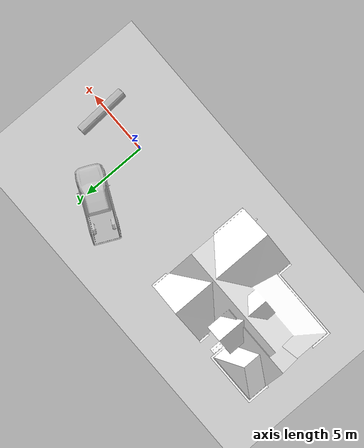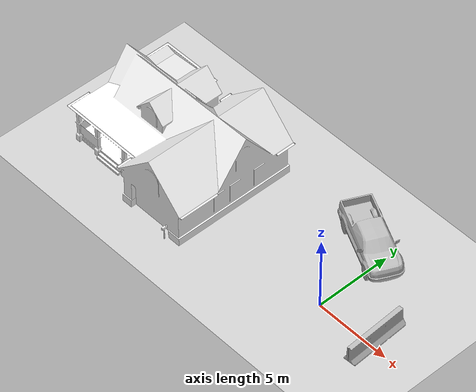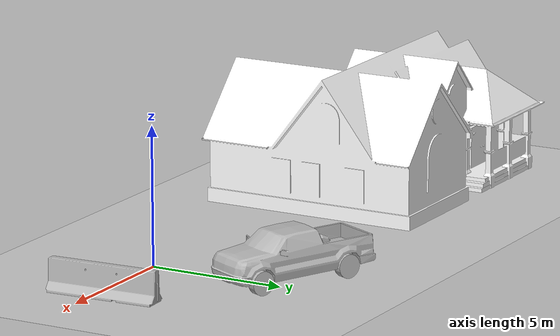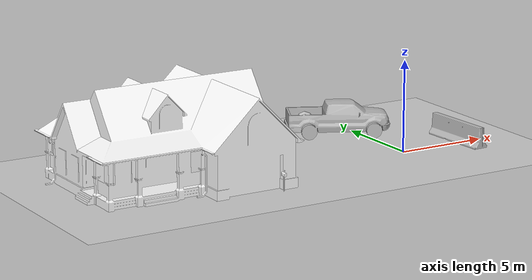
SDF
<sdf version="1.6">
 <world name="default">
  <light name="sun" type="directional">
   <pose>0 0 10 0 -0 0</pose>
   <diffuse>0.8 0.8 0.8 1</diffuse>
   <specular>0.1 0.1 0.1 1</specular>
   <attenuation>
    <range>1000</range>
    <constant>0.9</constant>
    <linear>0.01</linear>
    <quadratic>0.001</quadratic>
   </attenuation>
   <direction>-0.5 0.5 -1</direction>
  </light>
  <model name="ground_plane">
   <static>1</static>
   <link name="link">
    <collision name="collision">
     <geometry><plane><normal>0 0 1</normal><size>100 100</size></plane></geometry>
     <surface><friction><ode><mu>100</mu><mu2>50</mu2></ode></friction></surface>
    </collision>
    <visual name="visual">
     <cast_shadows>0</cast_shadows>
     <geometry><plane><normal>0 0 1</normal><size>100 100</size></plane></geometry>
     <material>
      <script><uri>file://media/materials/scripts/gazebo.material</uri><name>Gazebo/Grey</name></script>
     </material>
    </visual>
   </link>
  </model>
  <gravity>0 0 -9.8</gravity>
  <magnetic_field>6e-06 2.3e-05 -4.2e-05</magnetic_field>
  <atmosphere type="adiabatic"/>
  <physics name="default_physics" default="0" type="ode">
   <max_step_size>0.001</max_step_size>
   <real_time_factor>1</real_time_factor>
   <real_time_update_rate>1000</real_time_update_rate>
  </physics>
  <scene><ambient>0.4 0.4 0.4 1</ambient><background>0.7 0.7 0.7 1</background><shadows>1</shadows></scene>
  <spherical_coordinates>
   <surface_model>EARTH_WGS84</surface_model>
   <latitude_deg>0</latitude_deg>
   <longitude_deg>0</longitude_deg>
   <elevation>0</elevation>
   <heading_deg>0</heading_deg>
  </spherical_coordinates>
  <model name="House 1">
   <static>1</static>
   <link name="link">
    <collision name="collision">
     <geometry><mesh><uri>model://house_1/meshes/house_1.dae</uri><scale>1 1 1</scale></mesh></geometry>
    </collision>
    <visual name="visual">
     <geometry><mesh><uri>model://house_1/meshes/house_1.dae</uri><scale>1 1 1</scale></mesh></geometry>
     <material>
      <script>
       <uri>model://house_1/materials/scripts</uri>
       <uri>model://house_1/materials/textures</uri>
       <name>House_1/Diffuse</name>
      </script>
      <shader type="normal_map_object_space"><normal_map>House_1_Normal.png</normal_map></shader>
     </material>
    </visual>
   </link>
   <pose>-13.179 1.78023 0 0 -0 0</pose>
  </model>
  <model name="pickup">
   <static>1</static>
   <link name="link">
    <collision name="collision">
     <pose>0 0 0 0 0 -1.5708</pose>
     <geometry><mesh><uri>model://pickup/meshes/pickup.dae</uri><scale>1 1 1</scale></mesh></geometry>
    </collision>
    <visual name="visual">
     <pose>0 0 0 0 0 -1.5708</pose>
     <geometry><mesh><uri>model://pickup/meshes/pickup.dae</uri><scale>1 1 1</scale></mesh></geometry>
    </visual>
   </link>
   <pose>-0.915621 4.81723 0 0 0 -0.445883</pose>
  </model>
  <model name="jersey_barrier">
   <static>1</static>
   <link name="link">
    <visual name="visual">
     <geometry>
      <mesh><uri>model://jersey_barrier/meshes/jersey_barrier.dae</uri><scale>1 1 1</scale></mesh>
     </geometry>
    </visual>
    <collision name="upright">
     <pose>0 0 0.5715 0 -0 0</pose>
     <geometry><box><size>4.06542 0.3063 1.143</size></box></geometry>
    </collision>
    <collision name="base">
     <pose>0 0 0.032258 0 -0 0</pose>
     <geometry><box><size>4.06542 0.8107 0.064516</size></box></geometry>
    </collision>
    <collision name="base2">
     <pose>0 0 0.1 0 -0 0</pose>
     <geometry><box><size>4.06542 0.65 0.1</size></box></geometry>
    </collision>
    <collision name="base3">
     <pose>0 0 0.2 0 -0 0</pose>
     <geometry><box><size>4.06542 0.5 0.1</size></box></geometry>
    </collision>
    <collision name="left-angle">
     <pose>0 -0.224 0.2401 0.9 -0 0</pose>
     <geometry><box><size>4.06542 0.5 0.064516</size></box></geometry>
    </collision>
    <collision name="right-angle">
     <pose>0 0.224 0.2401 -0.9 0 0</pose>
     <geometry><box><size>4.06542 0.5 0.064516</size></box></geometry>
    </collision>
   </link>
   <pose>3.82811 0.371727 0 0 -0 1.6216</pose>
  </model>
  <model name="Mailbox">
   <link name="link">
    <collision name="collision">
     <geometry><mesh><uri>model://mailbox/meshes/mailbox.dae</uri><scale>1 1 1</scale></mesh></geometry>
    </collision>
    <visual name="visual">
     <geometry><mesh><uri>model://mailbox/meshes/mailbox.dae</uri><scale>1 1 1</scale></mesh></geometry>
     <material>
      <script>
       <uri>model://mailbox/materials/scripts</uri>
       <uri>model://mailbox/materials/textures</uri>
       <name>Mailbox/Diffuse</name>
      </script>
     </material>
    </visual>
    <inertial>
     <inertia><ixx>1</ixx><ixy>0</ixy><ixz>0</ixz><iyy>1</iyy><iyz>0</iyz><izz>1</izz></inertia>
     <mass>1</mass>
    </inertial>
   </link>
   <pose>-9.22839 -2.911 -9e-06 -1e-05 3e-06 0</pose>
  </model>
 </world>
</sdf>
